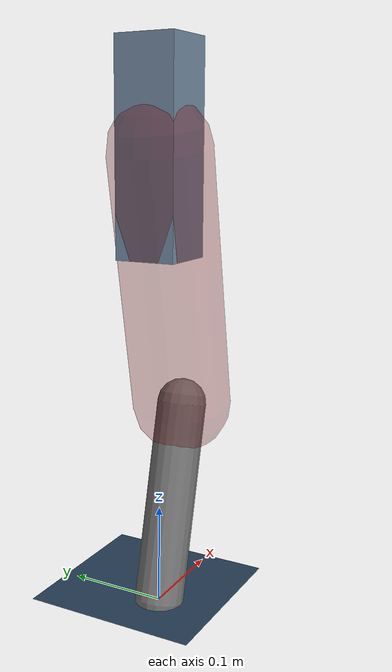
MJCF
<mujoco model="Hopper2D">
	<compiler inertiafromgeom="true" angle="radian" />
	<option timestep="0.001" integrator="implicit" cone="elliptic" solver="Newton" tolerance="1e-10" />

	<default>
		<geom contype="1" conaffinity="1" condim="3" friction="2 0.005 0.0001" solref="0.005 1" />
		<joint limited="true" damping="0.1" />
	</default>

	<asset>
		<texture name="skybox" type="skybox" builtin="gradient" rgb1=".4 .6 .8" rgb2="0 0 0" width="800" height="800" />
		<texture name="grid" type="2d" builtin="checker" rgb1=".1 .2 .3" rgb2=".2 .3 .4" width="300" height="300" mark="edge" markrgb=".2 .3 .4" />
		<material name="ground" texture="grid" texrepeat="1 1" texuniform="true" reflectance="0.1" />
		<material name="leg" rgba="0.5 0.6 0.7 1" />
	</asset>

	<worldbody>

		<geom name="floor" type="plane" size="5 5 0.25" material="ground" />

		<light directional="false" diffuse="0.8 0.8 0.8" specular="0.3 0.3 0.3" pos="0 0 2" dir="0 0 -1" />
		<light mode="targetbodycom" target="base" directional="false" diffuse="0.8 0.8 0.8" specular="0.3 0.3 0.3" pos="0 0 2" dir="0 0 -1" />

		<camera name="fixed" pos="0 -2 1" xyaxes="1 0 0 0 0 1" />
		<camera name="tracking" mode="trackcom" pos="0 -3 1" />

		<body name="root" pos="0 0 0.4509203692782356">
			<joint name="slide_x" type="slide" axis="1 0 0" range="-100 100" />
			<joint name="slide_z" type="slide" axis="0 0 1" range="0 10" />

			<body name="base" pos="0 0 0">
				<geom name="torso" type="box" size="0.03 0.03 0.1" mass="2.576" material="leg" />

				<body name="link1" pos="0 0 0" euler="0 1.3853303645015467 0">
					<joint type="hinge" axis="0 -1 0" pos="0 0 0" name="hinge1" limited="true" range="-3.14 3.14" stiffness="0" damping="0.1" />
					<geom name="thigh" type="capsule" fromto="0 0 0 0.2571014857713411 0 0" size="0.05" rgba="0.5 0 0 0.3" mass="0.8748638630054869" />

					<body name="link2" pos="0.2571014857713411 0 0" euler="0 0.4202282493426636 0">
						<joint type="hinge" axis="0 -1 0" pos="0 0 0" name="hinge2" limited="true" range="-3.14 3.14" stiffness="0" damping="0.1" />
						<geom name="shank" type="capsule" fromto="0 0 0 0.20381888350689448 0 0" size="0.025" mass="0.40413699515620505" />

					</body>
				</body>
			</body>
		</body>
	</worldbody>

	<actuator>
		<motor name="torque1" joint="hinge1" ctrlrange="-36.987328211243124 36.987328211243124" ctrllimited="true" gear="1" />
		<motor name="torque2" joint="hinge2" ctrlrange="-126.34840231167954 126.34840231167954" ctrllimited="true" gear="1" />
	</actuator>
</mujoco>
